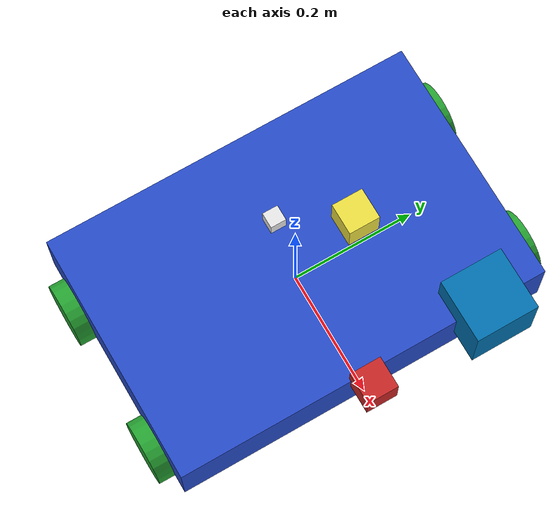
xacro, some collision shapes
<?xml version='1.0'?>

<robot name="trixy" xmlns:xacro="http://www.ros.org/wiki/xacro">

  <xacro:include filename="$(find trixy)/urdf/trixy.gazebo" />

  <gazebo reference="left_wheel">
    <material>Gazebo/Green</material>
  </gazebo>

  <gazebo reference="right_wheel">
    <material>Gazebo/Green</material>
  </gazebo>
   <gazebo reference="right_wheel_2">
    <material>Gazebo/Green</material>
  </gazebo>
  <gazebo reference="left_wheel_2">
    <material>Gazebo/Green</material>
  </gazebo>

  <gazebo reference="camera">
    <material>Gazebo/Red</material>
  </gazebo>

  <gazebo reference="chassis">
    <material>Gazebo/Blue</material>
  </gazebo>

  <gazebo reference="gps_link">
    <material>Gazebo/White</material>
  </gazebo>

  <link name="robot_footprint"></link>

  <joint name="robot_footprint_joint" type="fixed">
    <origin xyz="0 0 0" rpy="0 0 0" />
    <parent link="robot_footprint"/>
    <child link="chassis" />
  </joint>

  <joint name="camera_joint" type="fixed">
    <origin xyz="0.22 0 0.1" rpy="0 0 0" />
    <parent link="chassis"/>
    <child link="camera" />
    <axis xyz="0 1 0"/>
  </joint>

  <joint name="imu_joint" type="fixed">
    <origin xyz="0 0 0.05" rpy="0 0 0" />
    <parent link="chassis"/>
    <child link="imu_link" />
    <axis xyz="0 1 0"/>
  </joint>

  <joint name="gps_joint" type="fixed">
            <parent link="chassis"/>
            <origin xyz="-0.06 0 0.115" rpy="0 0 0"/>
            <child link="gps_link"/>
        </joint>

  <joint name="left_camera_frame" type="fixed">
    <origin xyz="0 0.10 0.13" rpy="0 0 0" />
    <parent link="chassis"/>
    <child link="left_camera_frame" />
    <axis xyz="0 1 0"/>
  </joint>

  <joint name="hokuyo_joint" type="fixed">
    <origin xyz="0.2 0.2 0.1" rpy="0 0 0" />
    <parent link="chassis"/>
    <child link="hokuyo" />
    <axis xyz="0 1 0"/>
  </joint>

  <joint type="continuous" name="left_wheel_hinge">
    <origin xyz="-0.12 0.30 0" rpy="0 0 0" />
    <parent link="chassis"/>
    <child link="left_wheel" />
    <axis xyz="0 1 0" rpy="0 0 0" />
    <limit effort="10000" velocity="1000" />
    <dynamics damping="1.0" friction="1.0000" />
  </joint>

  <joint type="continuous" name="right_wheel_hinge">
    <origin xyz="0.12 -0.30 0" rpy="0 0 0" />
    <parent link="chassis"/>
    <child link="right_wheel" />
    <axis xyz="0 1 0" rpy="0 0 0" />
    <limit effort="10000" velocity="1000" />
    <dynamics damping="1.0" friction="1.0000" />

  </joint>
  <joint type="continuous" name="right_wheel_hinge_2">
  <origin xyz="-0.12 -0.30 0" rpy="0 0 0" />
  <parent link="chassis"/>
  <child link="right_wheel_2" />
  <axis xyz="0 1 0" rpy="0 0 0" />
  <limit effort="10000" velocity="1000" />
  <dynamics damping="1.0" friction="1.0000" />
</joint>

<joint type="continuous" name="left_wheel_hinge_2">
  <origin xyz="0.12 0.30 0" rpy="0 0 0" />
  <parent link="chassis"/>
  <child link="left_wheel_2" />
  <axis xyz="0 1 0" rpy="0 0 0" />
  <limit effort="10000" velocity="1000" />
  <dynamics damping="1.0" friction="1.00000" />
</joint>

<link name="camera">
    <inertial>
      <mass value="0.1"/>
      <origin xyz="0 0 0" rpy="0 0 0"/>
      <inertia
        ixx="1e-6" ixy="0.0" ixz="0.0"
        iyy="1e-6" iyz="0.0"
        izz="1e-6"
      />
    </inertial>

    <collision>
      <origin xyz="0 0 0" rpy="0 0 0"/>
      <geometry>
        <box size="0.05 0.05 0.05"/>
      </geometry>
    </collision>

    <visual>
      <origin xyz="0 0 0" rpy="0 0 0"/>
      <geometry>
        <box size="0.05 0.05 0.05"/>
      </geometry>
    </visual>

  </link>

  <link name="imu_link">
    <inertial>
      <mass value="0.1"/>
      <origin xyz="0 0 0" rpy="0 0 0"/>
      <inertia
        ixx="1e-6" ixy="0.0" ixz="0.0"
        iyy="1e-6" iyz="0.0"
        izz="1e-6"
      />
    </inertial>

    <collision>
      <origin xyz="0 0 0" rpy="0 0 0"/>
      <geometry>
        <box size="0.05 0.05 0.05"/>
      </geometry>
    </collision>

    <visual>
      <origin xyz="0 0 0" rpy="0 0 0"/>
      <geometry>
        <box size="0.05 0.05 0.05"/>
      </geometry>
    </visual>

  </link>

  <link name="left_camera_frame">
    <inertial>
      <mass value="0.1"/>
      <origin xyz="0 0 0" rpy="0 0 0"/>
      <inertia
        ixx="1e-6" ixy="0.0" ixz="0.0"
        iyy="1e-6" iyz="0.0"
        izz="1e-6"
      />
    </inertial>

    <collision>
      <origin xyz="0 0 0" rpy="0 0 0"/>
      <geometry>
        <box size="0.05 0.05 0.05"/>
      </geometry>
    </collision>

    <visual>
      <origin xyz="0 0 0" rpy="0 0 0"/>
      <geometry>
        <box size="0.05 0.05 0.05"/>
      </geometry>
    </visual>

  </link>

  <link name="hokuyo">
    <inertial>
      <mass value="1e-5"/>
      <origin xyz="0 0 0" rpy="0 0 0"/>
      <inertia
        ixx="1e-6" ixy="0.0" ixz="0.0"
        iyy="1e-6" iyz="0.0"
        izz="1e-6"
      />
    </inertial>

    <collision>
      <origin xyz="0 0 0" rpy="0 0 0"/>
      <geometry>
        <box size="0.1 0.1 0.1"/>
      </geometry>
    </collision>

    <visual>
      <origin xyz="0 0 0" rpy="0 0 0"/>
      <geometry>
        <mesh filename="package://trixy/meshes/hokuyo.dae"/>
      </geometry>
    </visual>

  </link>

  <link name="gps_link">
        <collision>
        <origin xyz="0 0 0" rpy="0 0 0"/>
        <geometry>
            <box size="0.025 0.025 0.025"/>
        </geometry>
        </collision>

        <visual>
        <origin xyz="0 0 0" rpy="0 0 0"/>
        <geometry>
            <box size="0.025 0.025 0.025"/>
        </geometry>

        </visual>

        <inertial>
        <origin xyz="0 0 1" rpy="0 0 0"/>
        <mass value="1"/>
        <inertia
            ixx="1.0" ixy="0.0" ixz="0.0"
            iyy="1.0" iyz="0.0"
            izz="1.0"/>
        </inertial>
    </link>

  <link name="left_wheel_2">
  <mu1>0.5</mu1>
    <mu2>0.5</mu2>
    <kp>1000.0</kp>
    <kd>1.0</kd>
    <inertial>
      <mass value="10"/>
      <origin xyz="0 0 0" rpy="0 1.5707 1.5707"/>
      <inertia
        ixx="0.008333" ixy="0.0" ixz="0.0"
        iyy="0.008333" iyz="0.0"
        izz="0.0125"
      />
    </inertial>

    <collision>
      <origin xyz="0 0 0" rpy="0 1.5707 1.5707"/>
      <geometry>
        <cylinder radius="0.1" length="0.05"/>
      </geometry>
    </collision>

    <visual>
      <origin xyz="0 0 0" rpy="0 1.5707 1.5707"/>
      <geometry>
        <cylinder radius="0.05" length="0.05"/>
      </geometry>
    </visual>

  </link>
  <link name="left_wheel">
    <mu1>0.5</mu1>
    <mu2>0.5</mu2>
    <kp>1000.0</kp>
    <kd>1.0</kd>
    <inertial>
      <mass value="10"/>
      <origin xyz="0 0 0" rpy="0 1.5707 1.5707"/>
      <inertia
        ixx="0.008333" ixy="0.0" ixz="0.0"
        iyy="0.008333" iyz="0.0"
        izz="0.0125"
      />
    </inertial>

    <collision>
      <origin xyz="0 0 0" rpy="0 1.5707 1.5707"/>
      <geometry>
        <cylinder radius="0.1" length="0.05"/>
      </geometry>
    </collision>

    <visual>
      <origin xyz="0 0 0" rpy="0 1.5707 1.5707"/>
      <geometry>
        <cylinder radius="0.05" length="0.05"/>
      </geometry>
    </visual>

  </link>

  <link name="right_wheel">
  <mu1>0.5</mu1>
    <mu2>0.5</mu2>
    <kp>1000.0</kp>
    <kd>1.0</kd>
    <inertial>
      <mass value="10"/>
      <origin xyz="0 0 0" rpy="0 1.5707 1.5707"/>
      <inertia
        ixx="0.008333" ixy="0.0" ixz="0.0"
        iyy="0.008333" iyz="0.0"
        izz="0.0125"
      />
    </inertial>

    <collision>
      <origin xyz="0 0 0" rpy="0 1.5707 1.5707"/>
      <geometry>
        <cylinder radius="0.1" length="0.05"/>
      </geometry>
    </collision>

    <visual>
      <origin xyz="0 0 0" rpy="0 1.5707 1.5707"/>
      <geometry>
        <cylinder radius="0.05" length="0.05"/>
      </geometry>
    </visual>

  </link>
  <link name="right_wheel_2">
  <mu1>0.5</mu1>
    <mu2>0.5</mu2>
    <kp>1000.0</kp>
    <kd>1.0</kd>
  <inertial>
    <mass value="10"/>
    <origin xyz="0 0 0" rpy="0 1.5707 1.5707"/>
    <inertia ixx="0.008333" ixy="0.0" ixz="0.0" iyy="0.008333" iyz="0.0" izz="0.0125"/>
  </inertial>
  <collision>
    <origin xyz="0 0 0" rpy="0 1.5707 1.5707"/>
    <geometry>
      <cylinder radius="0.1" length="0.05"/>
    </geometry>
  </collision>
  <visual>
    <origin xyz="0 0 0" rpy="0 1.5707 1.5707"/>
    <geometry>
      <cylinder radius="0.05" length="0.05"/>
    </geometry>
  </visual>

</link>
  <link name='chassis'>
    <pose>0 0 0.1 0 0 0</pose>

    <inertial>
      <mass value="15.0"/>
      <origin xyz="0.0 0 0" rpy=" 0 0 0"/>
      <inertia
          ixx="0.4625" ixy="0" ixz="0"
          iyy="0.2125" iyz="0"
          izz="0.65"
      />
    </inertial>

    <collision name='collision'>
      <origin xyz="0 0 0.05" rpy=" 0 0 0"/>
      <geometry>
        <box size="0.4 0.6 0.1"/>
      </geometry>
    </collision>

    <visual name='chassis_visual'>
      <origin xyz="0 0 0.05" rpy=" 0 0 0"/>
      <geometry>
       <box size="0.4 0.6 0.1"/>
      </geometry>
    </visual>

  </link>

</robot>
